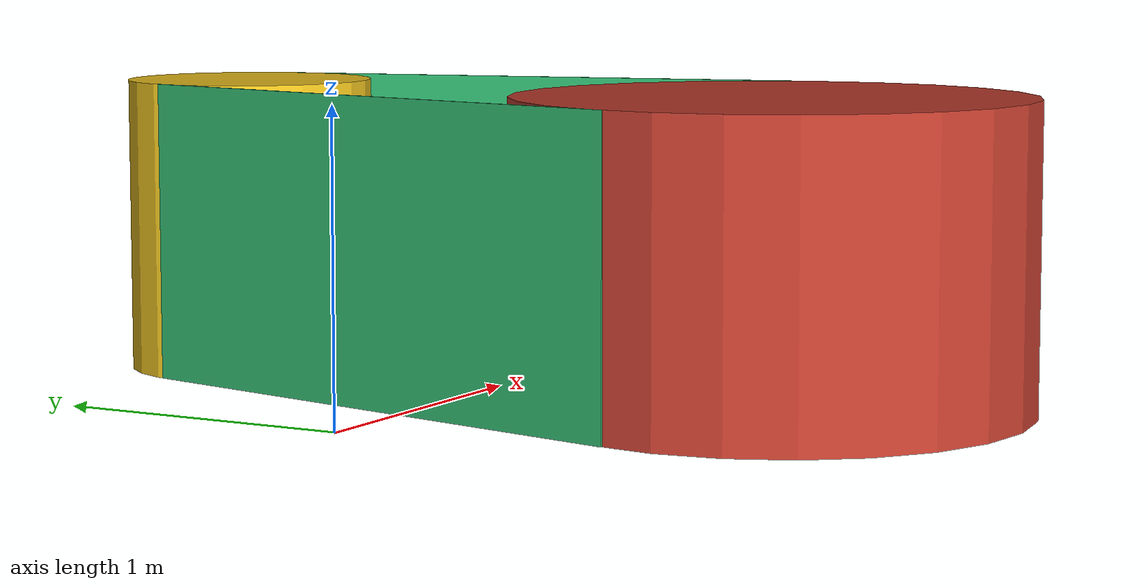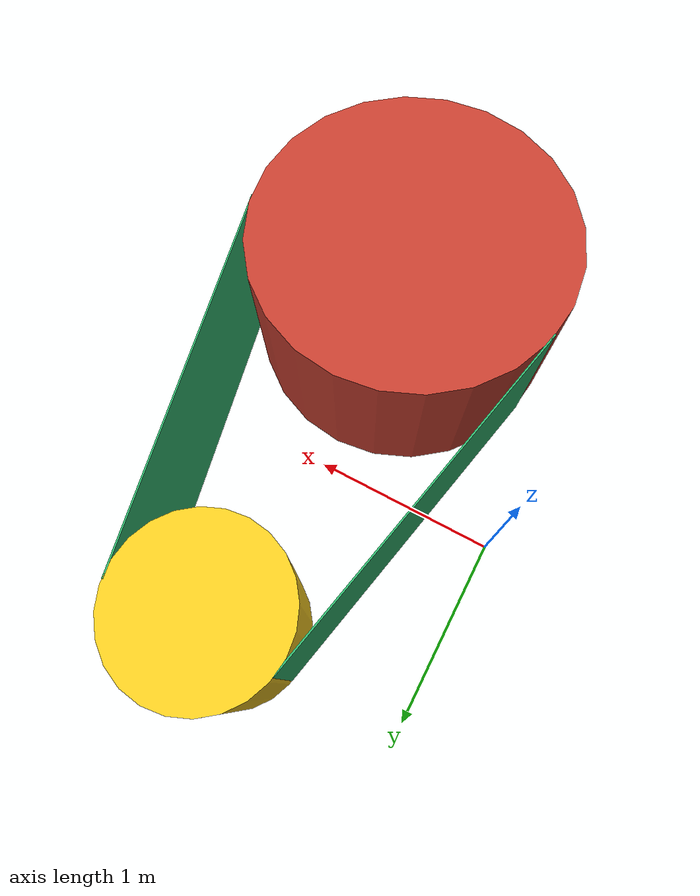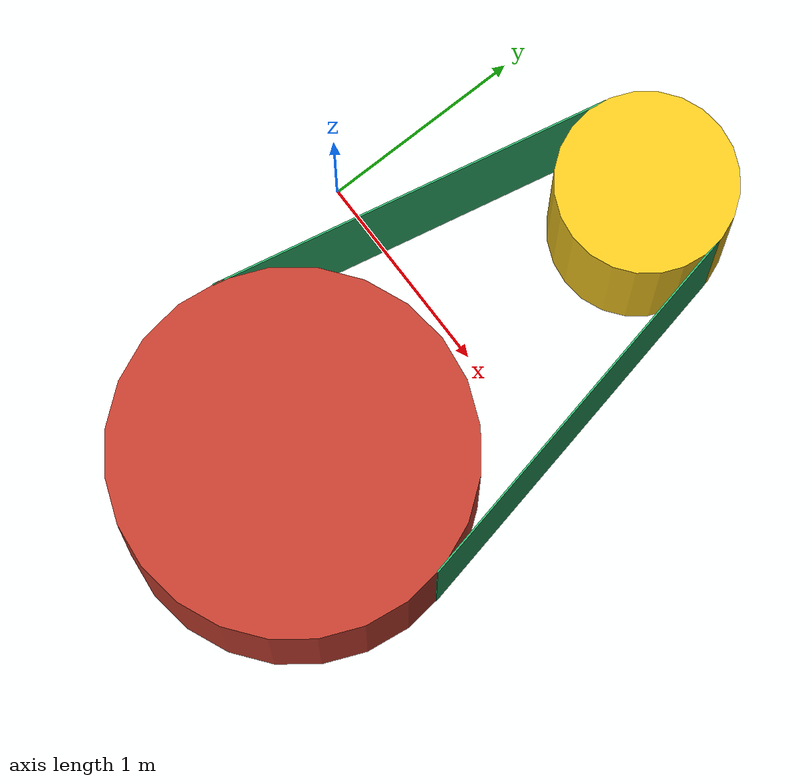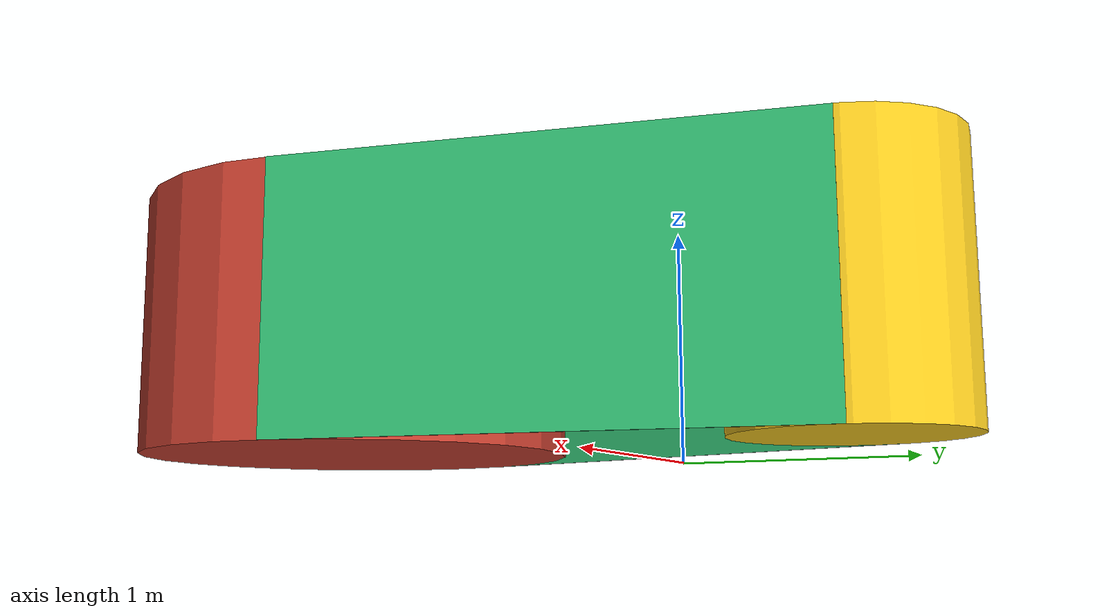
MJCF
<mujoco>
  <asset>
    <material name="small_cylinder_mat" rgba="0.95 0.78 0.12 1"/>
    <material name="large_cylinder_mat" rgba="0.76 0.24 0.18 1"/>
    <material name="cylinder_belt_mat" rgba="0.18 0.70 0.42 1"/>
  </asset>

  <worldbody>
    <body name="small_cylinder" pos="1.0 1.0 0">
      <geom name="small_cylinder_visual" type="cylinder" pos="0 0 0.5"
            size="0.42 0.5" material="small_cylinder_mat" group="2"
            contype="0" conaffinity="0" mass="0"/>
      <geom name="small_cylinder_collision" type="cylinder" pos="0 0 0.5"
            size="0.42 0.5" group="3" condim="3"
            contype="2" conaffinity="8" friction="0.1 0.003 0.001"
            margin="0.0015" gap="0.0005" solref="0.012 1.0"
            solimp="0.90 0.95 0.001" rgba="0 0 0 0" mass="0"/>
    </body>

    <body name="large_cylinder" pos="1.0 -1.0 0">
      <geom name="large_cylinder_visual" type="cylinder" pos="0 0 0.5"
            size="0.84 0.5" material="large_cylinder_mat" group="2"
            contype="0" conaffinity="0" mass="0"/>
      <geom name="large_cylinder_collision" type="cylinder" pos="0 0 0.5"
            size="0.84 0.5" group="3" condim="3"
            contype="2" conaffinity="8" friction="0.1 0.003 0.001"
            margin="0.0015" gap="0.0005" solref="0.012 1.0"
            solimp="0.90 0.95 0.001" rgba="0 0 0 0" mass="0"/>
    </body>

    <body name="cylinder_belt_right" pos="1.612041 0.13146 0.5" euler="0 0 -77.877577">
      <geom name="cylinder_belt_right_visual" type="box"
            size="0.977701 0.004 0.5" material="cylinder_belt_mat"
            group="2" contype="0" conaffinity="0" mass="0"/>
      <geom name="cylinder_belt_right_collision" type="box"
            size="0.977701 0.004 0.5" rgba="0 0 0 0"
            group="3" condim="3" contype="2" conaffinity="8"
            friction="0.1 0.003 0.001" margin="0.0015" gap="0.0005"
            solref="0.012 1.0" solimp="0.90 0.95 0.001" mass="0"/>
    </body>

    <!--
      Left external tangent: endpoints (0.589365,1.0882), (0.178731,-0.8236).
      Apply the mirrored inward offset so the outer contact face is flush.
    -->
    <body name="cylinder_belt_left" pos="0.387959 0.13146 0.5" euler="0 0 -102.122423">
      <geom name="cylinder_belt_left_visual" type="box"
            size="0.977701 0.004 0.5" material="cylinder_belt_mat"
            group="2" contype="0" conaffinity="0" mass="0"/>
      <geom name="cylinder_belt_left_collision" type="box"
            size="0.977701 0.004 0.5" rgba="0 0 0 0"
            group="3" condim="3" contype="2" conaffinity="8"
            friction="0.1 0.003 0.001" margin="0.0015" gap="0.0005"
            solref="0.012 1.0" solimp="0.90 0.95 0.001" mass="0"/>
    </body>
  </worldbody>
</mujoco>
